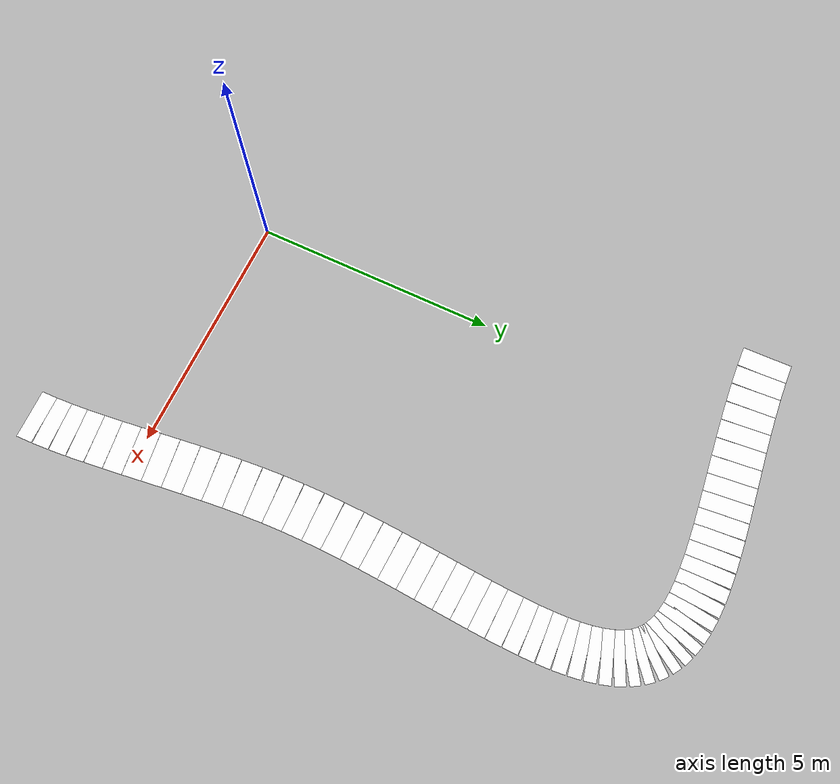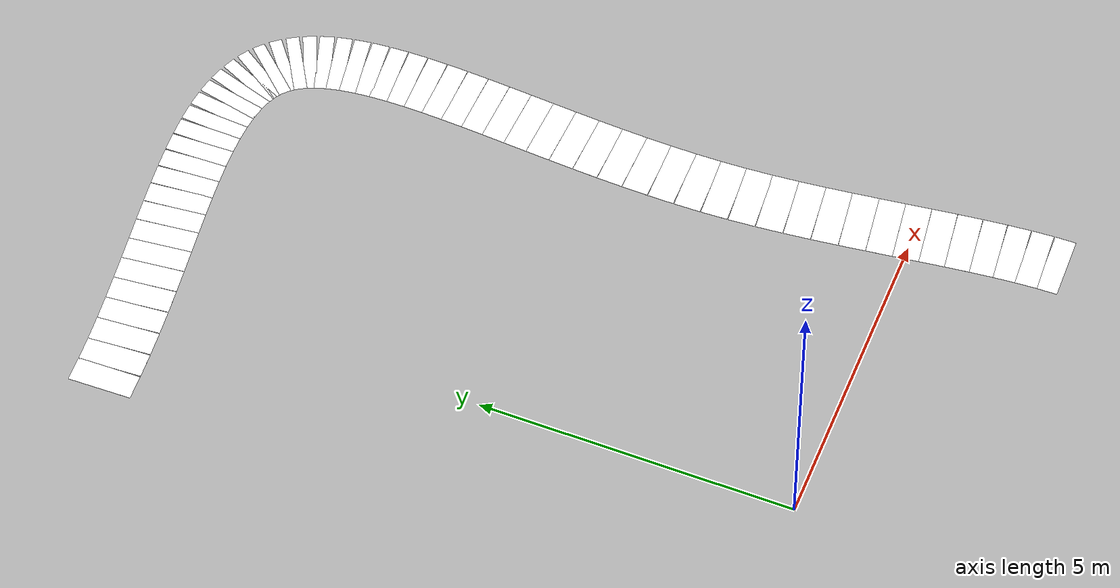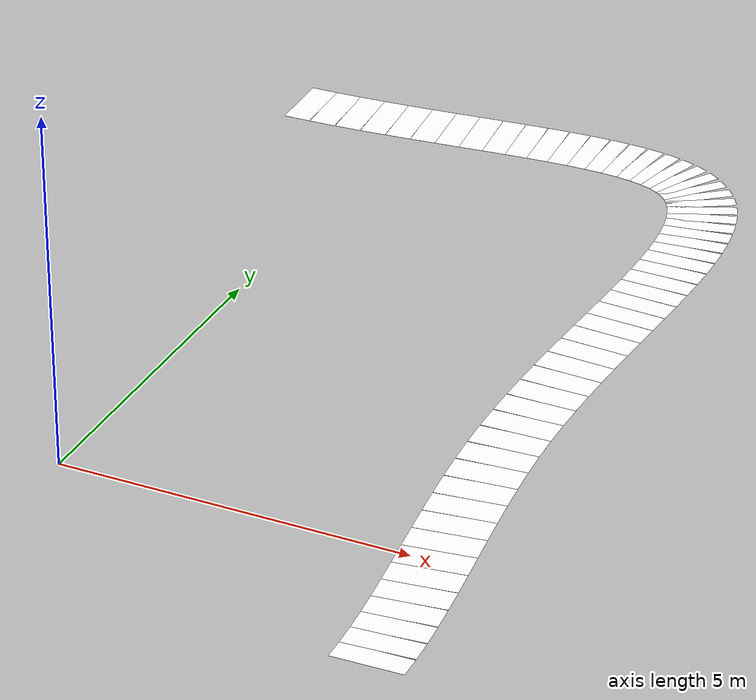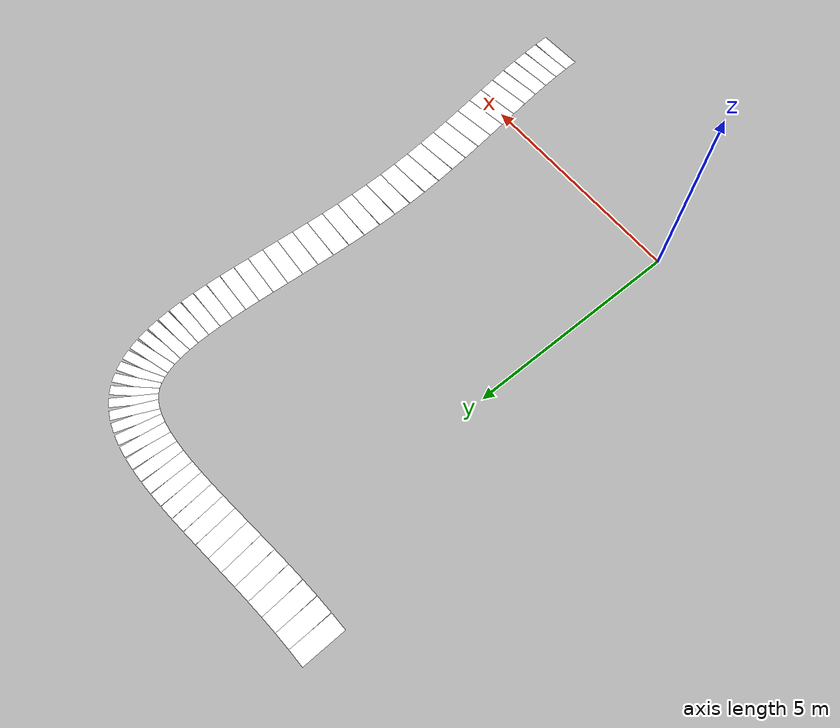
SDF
<sdf version="1.6">
 <model name="road_model">
  <model name="road_section_0">
   <static>1</static>
   <link name="road_link">
    <visual name="road_visual">
     <geometry><box><size>0.197141 1 0.0001</size></box></geometry>
     <material>
      <ambient>0.8 0.8 0.8 1</ambient>
      <diffuse>1 1 1 1</diffuse>
      <specular>0 0 0 1</specular>
      <pbr>
       <metal>
        <albedo_map>model://road_material/materials/textures/road_texture.jpg</albedo_map>
        <metalness>0</metalness>
        <roughness>0.8</roughness>
       </metal>
      </pbr>
     </material>
    </visual>
    <collision name="road_collision"><geometry><box><size>0.197141 1 0.0001</size></box></geometry></collision>
   </link>
   <pose>4.57288 10.3336 0 0 0 -0.738724</pose>
  </model>
  <model name="road_section_1">
   <static>1</static>
   <link name="road_link">
    <visual name="road_visual">
     <geometry><box><size>0.199153 1 0.0001</size></box></geometry>
     <material>
      <ambient>0.8 0.8 0.8 1</ambient>
      <diffuse>1 1 1 1</diffuse>
      <specular>0 0 0 1</specular>
      <pbr>
       <metal>
        <albedo_map>model://road_material/materials/textures/road_texture.jpg</albedo_map>
        <metalness>0</metalness>
        <roughness>0.8</roughness>
       </metal>
      </pbr>
     </material>
    </visual>
    <collision name="road_collision"><geometry><box><size>0.199153 1 0.0001</size></box></geometry></collision>
   </link>
   <pose>4.70788 10.1894 0 0 0 -0.897049</pose>
  </model>
  <model name="road_section_2">
   <static>1</static>
   <link name="road_link">
    <visual name="road_visual">
     <geometry><box><size>0.205917 1 0.0001</size></box></geometry>
     <material>
      <ambient>0.8 0.8 0.8 1</ambient>
      <diffuse>1 1 1 1</diffuse>
      <specular>0 0 0 1</specular>
      <pbr>
       <metal>
        <albedo_map>model://road_material/materials/textures/road_texture.jpg</albedo_map>
        <metalness>0</metalness>
        <roughness>0.8</roughness>
       </metal>
      </pbr>
     </material>
    </visual>
    <collision name="road_collision"><geometry><box><size>0.205917 1 0.0001</size></box></geometry></collision>
   </link>
   <pose>4.82211 10.0228 0 0 0 -1.04016</pose>
  </model>
  <model name="road_section_3">
   <static>1</static>
   <link name="road_link">
    <visual name="road_visual">
     <geometry><box><size>0.216306 1 0.0001</size></box></geometry>
     <material>
      <ambient>0.8 0.8 0.8 1</ambient>
      <diffuse>1 1 1 1</diffuse>
      <specular>0 0 0 1</specular>
      <pbr>
       <metal>
        <albedo_map>model://road_material/materials/textures/road_texture.jpg</albedo_map>
        <metalness>0</metalness>
        <roughness>0.8</roughness>
       </metal>
      </pbr>
     </material>
    </visual>
    <collision name="road_collision"><geometry><box><size>0.216306 1 0.0001</size></box></geometry></collision>
   </link>
   <pose>4.91703 9.8347 0 0 0 -1.16381</pose>
  </model>
  <model name="road_section_4">
   <static>1</static>
   <link name="road_link">
    <visual name="road_visual">
     <geometry><box><size>0.229219 1 0.0001</size></box></geometry>
     <material>
      <ambient>0.8 0.8 0.8 1</ambient>
      <diffuse>1 1 1 1</diffuse>
      <specular>0 0 0 1</specular>
      <pbr>
       <metal>
        <albedo_map>model://road_material/materials/textures/road_texture.jpg</albedo_map>
        <metalness>0</metalness>
        <roughness>0.8</roughness>
       </metal>
      </pbr>
     </material>
    </visual>
    <collision name="road_collision"><geometry><box><size>0.229219 1 0.0001</size></box></geometry></collision>
   </link>
   <pose>4.99408 9.62601 0 0 0 -1.26738</pose>
  </model>
  <model name="road_section_5">
   <static>1</static>
   <link name="road_link">
    <visual name="road_visual">
     <geometry><box><size>0.24372 1 0.0001</size></box></geometry>
     <material>
      <ambient>0.8 0.8 0.8 1</ambient>
      <diffuse>1 1 1 1</diffuse>
      <specular>0 0 0 1</specular>
      <pbr>
       <metal>
        <albedo_map>model://road_material/materials/textures/road_texture.jpg</albedo_map>
        <metalness>0</metalness>
        <roughness>0.8</roughness>
       </metal>
      </pbr>
     </material>
    </visual>
    <collision name="road_collision"><geometry><box><size>0.24372 1 0.0001</size></box></geometry></collision>
   </link>
   <pose>5.05473 9.39767 0 0 0 -1.35241</pose>
  </model>
  <model name="road_section_6">
   <static>1</static>
   <link name="road_link">
    <visual name="road_visual">
     <geometry><box><size>0.259075 1 0.0001</size></box></geometry>
     <material>
      <ambient>0.8 0.8 0.8 1</ambient>
      <diffuse>1 1 1 1</diffuse>
      <specular>0 0 0 1</specular>
      <pbr>
       <metal>
        <albedo_map>model://road_material/materials/textures/road_texture.jpg</albedo_map>
        <metalness>0</metalness>
        <roughness>0.8</roughness>
       </metal>
      </pbr>
     </material>
    </visual>
    <collision name="road_collision"><geometry><box><size>0.259075 1 0.0001</size></box></geometry></collision>
   </link>
   <pose>5.10042 9.15061 0 0 0 -1.42135</pose>
  </model>
  <model name="road_section_7">
   <static>1</static>
   <link name="road_link">
    <visual name="road_visual">
     <geometry><box><size>0.27473 1 0.0001</size></box></geometry>
     <material>
      <ambient>0.8 0.8 0.8 1</ambient>
      <diffuse>1 1 1 1</diffuse>
      <specular>0 0 0 1</specular>
      <pbr>
       <metal>
        <albedo_map>model://road_material/materials/textures/road_texture.jpg</albedo_map>
        <metalness>0</metalness>
        <roughness>0.8</roughness>
       </metal>
      </pbr>
     </material>
    </visual>
    <collision name="road_collision"><geometry><box><size>0.27473 1 0.0001</size></box></geometry></collision>
   </link>
   <pose>5.13261 8.88576 0 0 0 -1.47675</pose>
  </model>
  <model name="road_section_8">
   <static>1</static>
   <link name="road_link">
    <visual name="road_visual">
     <geometry><box><size>0.290279 1 0.0001</size></box></geometry>
     <material>
      <ambient>0.8 0.8 0.8 1</ambient>
      <diffuse>1 1 1 1</diffuse>
      <specular>0 0 0 1</specular>
      <pbr>
       <metal>
        <albedo_map>model://road_material/materials/textures/road_texture.jpg</albedo_map>
        <metalness>0</metalness>
        <roughness>0.8</roughness>
       </metal>
      </pbr>
     </material>
    </visual>
    <collision name="road_collision"><geometry><box><size>0.290279 1 0.0001</size></box></geometry></collision>
   </link>
   <pose>5.15275 8.60404 0 0 0 -1.5209</pose>
  </model>
  <model name="road_section_9">
   <static>1</static>
   <link name="road_link">
    <visual name="road_visual">
     <geometry><box><size>0.305427 1 0.0001</size></box></geometry>
     <material>
      <ambient>0.8 0.8 0.8 1</ambient>
      <diffuse>1 1 1 1</diffuse>
      <specular>0 0 0 1</specular>
      <pbr>
       <metal>
        <albedo_map>model://road_material/materials/textures/road_texture.jpg</albedo_map>
        <metalness>0</metalness>
        <roughness>0.8</roughness>
       </metal>
      </pbr>
     </material>
    </visual>
    <collision name="road_collision"><geometry><box><size>0.305427 1 0.0001</size></box></geometry></collision>
   </link>
   <pose>5.16229 8.30639 0 0 0 -1.5557</pose>
  </model>
  <model name="road_section_10">
   <static>1</static>
   <link name="road_link">
    <visual name="road_visual">
     <geometry><box><size>0.319962 1 0.0001</size></box></geometry>
     <material>
      <ambient>0.8 0.8 0.8 1</ambient>
      <diffuse>1 1 1 1</diffuse>
      <specular>0 0 0 1</specular>
      <pbr>
       <metal>
        <albedo_map>model://road_material/materials/textures/road_texture.jpg</albedo_map>
        <metalness>0</metalness>
        <roughness>0.8</roughness>
       </metal>
      </pbr>
     </material>
    </visual>
    <collision name="road_collision"><geometry><box><size>0.319962 1 0.0001</size></box></geometry></collision>
   </link>
   <pose>5.16269 7.99372 0 0 0 -1.58269</pose>
  </model>
  <model name="road_section_11">
   <static>1</static>
   <link name="road_link">
    <visual name="road_visual">
     <geometry><box><size>0.333733 1 0.0001</size></box></geometry>
     <material>
      <ambient>0.8 0.8 0.8 1</ambient>
      <diffuse>1 1 1 1</diffuse>
      <specular>0 0 0 1</specular>
      <pbr>
       <metal>
        <albedo_map>model://road_material/materials/textures/road_texture.jpg</albedo_map>
        <metalness>0</metalness>
        <roughness>0.8</roughness>
       </metal>
      </pbr>
     </material>
    </visual>
    <collision name="road_collision"><geometry><box><size>0.333733 1 0.0001</size></box></geometry></collision>
   </link>
   <pose>5.1554 7.66697 0 0 0 -1.60307</pose>
  </model>
  <model name="road_section_12">
   <static>1</static>
   <link name="road_link">
    <visual name="road_visual">
     <geometry><box><size>0.346634 1 0.0001</size></box></geometry>
     <material>
      <ambient>0.8 0.8 0.8 1</ambient>
      <diffuse>1 1 1 1</diffuse>
      <specular>0 0 0 1</specular>
      <pbr>
       <metal>
        <albedo_map>model://road_material/materials/textures/road_texture.jpg</albedo_map>
        <metalness>0</metalness>
        <roughness>0.8</roughness>
       </metal>
      </pbr>
     </material>
    </visual>
    <collision name="road_collision"><geometry><box><size>0.346634 1 0.0001</size></box></geometry></collision>
   </link>
   <pose>5.14188 7.32707 0 0 0 -1.61777</pose>
  </model>
  <model name="road_section_13">
   <static>1</static>
   <link name="road_link">
    <visual name="road_visual">
     <geometry><box><size>0.358594 1 0.0001</size></box></geometry>
     <material>
      <ambient>0.8 0.8 0.8 1</ambient>
      <diffuse>1 1 1 1</diffuse>
      <specular>0 0 0 1</specular>
      <pbr>
       <metal>
        <albedo_map>model://road_material/materials/textures/road_texture.jpg</albedo_map>
        <metalness>0</metalness>
        <roughness>0.8</roughness>
       </metal>
      </pbr>
     </material>
    </visual>
    <collision name="road_collision"><geometry><box><size>0.358594 1 0.0001</size></box></geometry></collision>
   </link>
   <pose>5.12358 6.97493 0 0 0 -1.62752</pose>
  </model>
  <model name="road_section_14">
   <static>1</static>
   <link name="road_link">
    <visual name="road_visual">
     <geometry><box><size>0.369568 1 0.0001</size></box></geometry>
     <material>
      <ambient>0.8 0.8 0.8 1</ambient>
      <diffuse>1 1 1 1</diffuse>
      <specular>0 0 0 1</specular>
      <pbr>
       <metal>
        <albedo_map>model://road_material/materials/textures/road_texture.jpg</albedo_map>
        <metalness>0</metalness>
        <roughness>0.8</roughness>
       </metal>
      </pbr>
     </material>
    </visual>
    <collision name="road_collision"><geometry><box><size>0.369568 1 0.0001</size></box></geometry></collision>
   </link>
   <pose>5.10195 6.6115 0 0 0 -1.63288</pose>
  </model>
  <model name="road_section_15">
   <static>1</static>
   <link name="road_link">
    <visual name="road_visual">
     <geometry><box><size>0.379531 1 0.0001</size></box></geometry>
     <material>
      <ambient>0.8 0.8 0.8 1</ambient>
      <diffuse>1 1 1 1</diffuse>
      <specular>0 0 0 1</specular>
      <pbr>
       <metal>
        <albedo_map>model://road_material/materials/textures/road_texture.jpg</albedo_map>
        <metalness>0</metalness>
        <roughness>0.8</roughness>
       </metal>
      </pbr>
     </material>
    </visual>
    <collision name="road_collision"><geometry><box><size>0.379531 1 0.0001</size></box></geometry></collision>
   </link>
   <pose>5.07845 6.23769 0 0 0 -1.63428</pose>
  </model>
  <model name="road_section_16">
   <static>1</static>
   <link name="road_link">
    <visual name="road_visual">
     <geometry><box><size>0.388479 1 0.0001</size></box></geometry>
     <material>
      <ambient>0.8 0.8 0.8 1</ambient>
      <diffuse>1 1 1 1</diffuse>
      <specular>0 0 0 1</specular>
      <pbr>
       <metal>
        <albedo_map>model://road_material/materials/textures/road_texture.jpg</albedo_map>
        <metalness>0</metalness>
        <roughness>0.8</roughness>
       </metal>
      </pbr>
     </material>
    </visual>
    <collision name="road_collision"><geometry><box><size>0.388479 1 0.0001</size></box></geometry></collision>
   </link>
   <pose>5.05452 5.85443 0 0 0 -1.63203</pose>
  </model>
  <model name="road_section_17">
   <static>1</static>
   <link name="road_link">
    <visual name="road_visual">
     <geometry><box><size>0.396419 1 0.0001</size></box></geometry>
     <material>
      <ambient>0.8 0.8 0.8 1</ambient>
      <diffuse>1 1 1 1</diffuse>
      <specular>0 0 0 1</specular>
      <pbr>
       <metal>
        <albedo_map>model://road_material/materials/textures/road_texture.jpg</albedo_map>
        <metalness>0</metalness>
        <roughness>0.8</roughness>
       </metal>
      </pbr>
     </material>
    </visual>
    <collision name="road_collision"><geometry><box><size>0.396419 1 0.0001</size></box></geometry></collision>
   </link>
   <pose>5.03163 5.46265 0 0 0 -1.62635</pose>
  </model>
  <model name="road_section_18">
   <static>1</static>
   <link name="road_link">
    <visual name="road_visual">
     <geometry><box><size>0.403375 1 0.0001</size></box></geometry>
     <material>
      <ambient>0.8 0.8 0.8 1</ambient>
      <diffuse>1 1 1 1</diffuse>
      <specular>0 0 0 1</specular>
      <pbr>
       <metal>
        <albedo_map>model://road_material/materials/textures/road_texture.jpg</albedo_map>
        <metalness>0</metalness>
        <roughness>0.8</roughness>
       </metal>
      </pbr>
     </material>
    </visual>
    <collision name="road_collision"><geometry><box><size>0.403375 1 0.0001</size></box></geometry></collision>
   </link>
   <pose>5.01122 5.06328 0 0 0 -1.61742</pose>
  </model>
  <model name="road_section_19">
   <static>1</static>
   <link name="road_link">
    <visual name="road_visual">
     <geometry><box><size>0.409383 1 0.0001</size></box></geometry>
     <material>
      <ambient>0.8 0.8 0.8 1</ambient>
      <diffuse>1 1 1 1</diffuse>
      <specular>0 0 0 1</specular>
      <pbr>
       <metal>
        <albedo_map>model://road_material/materials/textures/road_texture.jpg</albedo_map>
        <metalness>0</metalness>
        <roughness>0.8</roughness>
       </metal>
      </pbr>
     </material>
    </visual>
    <collision name="road_collision"><geometry><box><size>0.409383 1 0.0001</size></box></geometry></collision>
   </link>
   <pose>4.99476 4.65724 0 0 0 -1.60533</pose>
  </model>
  <model name="road_section_20">
   <static>1</static>
   <link name="road_link">
    <visual name="road_visual">
     <geometry><box><size>0.414492 1 0.0001</size></box></geometry>
     <material>
      <ambient>0.8 0.8 0.8 1</ambient>
      <diffuse>1 1 1 1</diffuse>
      <specular>0 0 0 1</specular>
      <pbr>
       <metal>
        <albedo_map>model://road_material/materials/textures/road_texture.jpg</albedo_map>
        <metalness>0</metalness>
        <roughness>0.8</roughness>
       </metal>
      </pbr>
     </material>
    </visual>
    <collision name="road_collision"><geometry><box><size>0.414492 1 0.0001</size></box></geometry></collision>
   </link>
   <pose>4.98368 4.24546 0 0 0 -1.59013</pose>
  </model>
  <model name="road_section_21">
   <static>1</static>
   <link name="road_link">
    <visual name="road_visual">
     <geometry><box><size>0.418762 1 0.0001</size></box></geometry>
     <material>
      <ambient>0.8 0.8 0.8 1</ambient>
      <diffuse>1 1 1 1</diffuse>
      <specular>0 0 0 1</specular>
      <pbr>
       <metal>
        <albedo_map>model://road_material/materials/textures/road_texture.jpg</albedo_map>
        <metalness>0</metalness>
        <roughness>0.8</roughness>
       </metal>
      </pbr>
     </material>
    </visual>
    <collision name="road_collision"><geometry><box><size>0.418762 1 0.0001</size></box></geometry></collision>
   </link>
   <pose>4.97946 3.82887 0 0 0 -1.57184</pose>
  </model>
  <model name="road_section_22">
   <static>1</static>
   <link name="road_link">
    <visual name="road_visual">
     <geometry><box><size>0.42227 1 0.0001</size></box></geometry>
     <material>
      <ambient>0.8 0.8 0.8 1</ambient>
      <diffuse>1 1 1 1</diffuse>
      <specular>0 0 0 1</specular>
      <pbr>
       <metal>
        <albedo_map>model://road_material/materials/textures/road_texture.jpg</albedo_map>
        <metalness>0</metalness>
        <roughness>0.8</roughness>
       </metal>
      </pbr>
     </material>
    </visual>
    <collision name="road_collision"><geometry><box><size>0.42227 1 0.0001</size></box></geometry></collision>
   </link>
   <pose>4.98353 3.4084 0 0 0 -1.55046</pose>
  </model>
  <model name="road_section_23">
   <static>1</static>
   <link name="road_link">
    <visual name="road_visual">
     <geometry><box><size>0.425101 1 0.0001</size></box></geometry>
     <material>
      <ambient>0.8 0.8 0.8 1</ambient>
      <diffuse>1 1 1 1</diffuse>
      <specular>0 0 0 1</specular>
      <pbr>
       <metal>
        <albedo_map>model://road_material/materials/textures/road_texture.jpg</albedo_map>
        <metalness>0</metalness>
        <roughness>0.8</roughness>
       </metal>
      </pbr>
     </material>
    </visual>
    <collision name="road_collision"><geometry><box><size>0.425101 1 0.0001</size></box></geometry></collision>
   </link>
   <pose>4.99735 2.98497 0 0 0 -1.52596</pose>
  </model>
  <model name="road_section_24">
   <static>1</static>
   <link name="road_link">
    <visual name="road_visual">
     <geometry><box><size>0.427101 1 0.0001</size></box></geometry>
     <material>
      <ambient>0.8 0.8 0.8 1</ambient>
      <diffuse>1 1 1 1</diffuse>
      <specular>0 0 0 1</specular>
      <pbr>
       <metal>
        <albedo_map>model://road_material/materials/textures/road_texture.jpg</albedo_map>
        <metalness>0</metalness>
        <roughness>0.8</roughness>
       </metal>
      </pbr>
     </material>
    </visual>
    <collision name="road_collision"><geometry><box><size>0.427101 1 0.0001</size></box></geometry></collision>
   </link>
   <pose>5.02177 2.5596 0 0 0 -1.50102</pose>
  </model>
  <model name="road_section_25">
   <static>1</static>
   <link name="road_link">
    <visual name="road_visual">
     <geometry><box><size>0.427807 1 0.0001</size></box></geometry>
     <material>
      <ambient>0.8 0.8 0.8 1</ambient>
      <diffuse>1 1 1 1</diffuse>
      <specular>0 0 0 1</specular>
      <pbr>
       <metal>
        <albedo_map>model://road_material/materials/textures/road_texture.jpg</albedo_map>
        <metalness>0</metalness>
        <roughness>0.8</roughness>
       </metal>
      </pbr>
     </material>
    </visual>
    <collision name="road_collision"><geometry><box><size>0.427807 1 0.0001</size></box></geometry></collision>
   </link>
   <pose>5.05603 2.13355 0 0 0 -1.48009</pose>
  </model>
  <model name="road_section_26">
   <static>1</static>
   <link name="road_link">
    <visual name="road_visual">
     <geometry><box><size>0.427068 1 0.0001</size></box></geometry>
     <material>
      <ambient>0.8 0.8 0.8 1</ambient>
      <diffuse>1 1 1 1</diffuse>
      <specular>0 0 0 1</specular>
      <pbr>
       <metal>
        <albedo_map>model://road_material/materials/textures/road_texture.jpg</albedo_map>
        <metalness>0</metalness>
        <roughness>0.8</roughness>
       </metal>
      </pbr>
     </material>
    </visual>
    <collision name="road_collision"><geometry><box><size>0.427068 1 0.0001</size></box></geometry></collision>
   </link>
   <pose>5.0983 1.70822 0 0 0 -1.46339</pose>
  </model>
  <model name="road_section_27">
   <static>1</static>
   <link name="road_link">
    <visual name="road_visual">
     <geometry><box><size>0.424794 1 0.0001</size></box></geometry>
     <material>
      <ambient>0.8 0.8 0.8 1</ambient>
      <diffuse>1 1 1 1</diffuse>
      <specular>0 0 0 1</specular>
      <pbr>
       <metal>
        <albedo_map>model://road_material/materials/textures/road_texture.jpg</albedo_map>
        <metalness>0</metalness>
        <roughness>0.8</roughness>
       </metal>
      </pbr>
     </material>
    </visual>
    <collision name="road_collision"><geometry><box><size>0.424794 1 0.0001</size></box></geometry></collision>
   </link>
   <pose>5.14662 1.28505 0 0 0 -1.45076</pose>
  </model>
  <model name="road_section_28">
   <static>1</static>
   <link name="road_link">
    <visual name="road_visual">
     <geometry><box><size>0.420918 1 0.0001</size></box></geometry>
     <material>
      <ambient>0.8 0.8 0.8 1</ambient>
      <diffuse>1 1 1 1</diffuse>
      <specular>0 0 0 1</specular>
      <pbr>
       <metal>
        <albedo_map>model://road_material/materials/textures/road_texture.jpg</albedo_map>
        <metalness>0</metalness>
        <roughness>0.8</roughness>
       </metal>
      </pbr>
     </material>
    </visual>
    <collision name="road_collision"><geometry><box><size>0.420918 1 0.0001</size></box></geometry></collision>
   </link>
   <pose>5.19906 0.865461 0 0 0 -1.44212</pose>
  </model>
  <model name="road_section_29">
   <static>1</static>
   <link name="road_link">
    <visual name="road_visual">
     <geometry><box><size>0.415396 1 0.0001</size></box></geometry>
     <material>
      <ambient>0.8 0.8 0.8 1</ambient>
      <diffuse>1 1 1 1</diffuse>
      <specular>0 0 0 1</specular>
      <pbr>
       <metal>
        <albedo_map>model://road_material/materials/textures/road_texture.jpg</albedo_map>
        <metalness>0</metalness>
        <roughness>0.8</roughness>
       </metal>
      </pbr>
     </material>
    </visual>
    <collision name="road_collision"><geometry><box><size>0.415396 1 0.0001</size></box></geometry></collision>
   </link>
   <pose>5.25367 0.450887 0 0 0 -1.43748</pose>
  </model>
  <model name="road_section_30">
   <static>1</static>
   <link name="road_link">
    <visual name="road_visual">
     <geometry><box><size>0.408204 1 0.0001</size></box></geometry>
     <material>
      <ambient>0.8 0.8 0.8 1</ambient>
      <diffuse>1 1 1 1</diffuse>
      <specular>0 0 0 1</specular>
      <pbr>
       <metal>
        <albedo_map>model://road_material/materials/textures/road_texture.jpg</albedo_map>
        <metalness>0</metalness>
        <roughness>0.8</roughness>
       </metal>
      </pbr>
     </material>
    </visual>
    <collision name="road_collision"><geometry><box><size>0.408204 1 0.0001</size></box></geometry></collision>
   </link>
   <pose>5.30852 0.042755 0 0 0 -1.43696</pose>
  </model>
  <model name="road_section_31">
   <static>1</static>
   <link name="road_link">
    <visual name="road_visual">
     <geometry><box><size>0.39934 1 0.0001</size></box></geometry>
     <material>
      <ambient>0.8 0.8 0.8 1</ambient>
      <diffuse>1 1 1 1</diffuse>
      <specular>0 0 0 1</specular>
      <pbr>
       <metal>
        <albedo_map>model://road_material/materials/textures/road_texture.jpg</albedo_map>
        <metalness>0</metalness>
        <roughness>0.8</roughness>
       </metal>
      </pbr>
     </material>
    </visual>
    <collision name="road_collision"><geometry><box><size>0.39934 1 0.0001</size></box></geometry></collision>
   </link>
   <pose>5.36165 -0.357506 0 0 0 -1.44075</pose>
  </model>
  <model name="road_section_32">
   <static>1</static>
   <link name="road_link">
    <visual name="road_visual">
     <geometry><box><size>0.388824 1 0.0001</size></box></geometry>
     <material>
      <ambient>0.8 0.8 0.8 1</ambient>
      <diffuse>1 1 1 1</diffuse>
      <specular>0 0 0 1</specular>
      <pbr>
       <metal>
        <albedo_map>model://road_material/materials/textures/road_texture.jpg</albedo_map>
        <metalness>0</metalness>
        <roughness>0.8</roughness>
       </metal>
      </pbr>
     </material>
    </visual>
    <collision name="road_collision"><geometry><box><size>0.388824 1 0.0001</size></box></geometry></collision>
   </link>
   <pose>5.41112 -0.748467 0 0 0 -1.44921</pose>
  </model>
  <model name="road_section_33">
   <static>1</static>
   <link name="road_link">
    <visual name="road_visual">
     <geometry><box><size>0.376704 1 0.0001</size></box></geometry>
     <material>
      <ambient>0.8 0.8 0.8 1</ambient>
      <diffuse>1 1 1 1</diffuse>
      <specular>0 0 0 1</specular>
      <pbr>
       <metal>
        <albedo_map>model://road_material/materials/textures/road_texture.jpg</albedo_map>
        <metalness>0</metalness>
        <roughness>0.8</roughness>
       </metal>
      </pbr>
     </material>
    </visual>
    <collision name="road_collision"><geometry><box><size>0.376704 1 0.0001</size></box></geometry></collision>
   </link>
   <pose>5.45499 -1.1287 0 0 0 -1.46285</pose>
  </model>
  <model name="road_section_34">
   <static>1</static>
   <link name="road_link">
    <visual name="road_visual">
     <geometry><box><size>0.363058 1 0.0001</size></box></geometry>
     <material>
      <ambient>0.8 0.8 0.8 1</ambient>
      <diffuse>1 1 1 1</diffuse>
      <specular>0 0 0 1</specular>
      <pbr>
       <metal>
        <albedo_map>model://road_material/materials/textures/road_texture.jpg</albedo_map>
        <metalness>0</metalness>
        <roughness>0.8</roughness>
       </metal>
      </pbr>
     </material>
    </visual>
    <collision name="road_collision"><geometry><box><size>0.363058 1 0.0001</size></box></geometry></collision>
   </link>
   <pose>5.49132 -1.49677 0 0 0 -1.48234</pose>
  </model>
  <model name="road_section_35">
   <static>1</static>
   <link name="road_link">
    <visual name="road_visual">
     <geometry><box><size>0.34801 1 0.0001</size></box></geometry>
     <material>
      <ambient>0.8 0.8 0.8 1</ambient>
      <diffuse>1 1 1 1</diffuse>
      <specular>0 0 0 1</specular>
      <pbr>
       <metal>
        <albedo_map>model://road_material/materials/textures/road_texture.jpg</albedo_map>
        <metalness>0</metalness>
        <roughness>0.8</roughness>
       </metal>
      </pbr>
     </material>
    </visual>
    <collision name="road_collision"><geometry><box><size>0.34801 1 0.0001</size></box></geometry></collision>
   </link>
   <pose>5.51816 -1.85126 0 0 0 -1.50865</pose>
  </model>
  <model name="road_section_36">
   <static>1</static>
   <link name="road_link">
    <visual name="road_visual">
     <geometry><box><size>0.331737 1 0.0001</size></box></geometry>
     <material>
      <ambient>0.8 0.8 0.8 1</ambient>
      <diffuse>1 1 1 1</diffuse>
      <specular>0 0 0 1</specular>
      <pbr>
       <metal>
        <albedo_map>model://road_material/materials/textures/road_texture.jpg</albedo_map>
        <metalness>0</metalness>
        <roughness>0.8</roughness>
       </metal>
      </pbr>
     </material>
    </visual>
    <collision name="road_collision"><geometry><box><size>0.331737 1 0.0001</size></box></geometry></collision>
   </link>
   <pose>5.53357 -2.19074 0 0 0 -1.54302</pose>
  </model>
  <model name="road_section_153">
   <static>1</static>
   <link name="road_link">
    <visual name="road_visual">
     <geometry><box><size>0.400847 1 0.0001</size></box></geometry>
     <material>
      <ambient>0.8 0.8 0.8 1</ambient>
      <diffuse>1 1 1 1</diffuse>
      <specular>0 0 0 1</specular>
      <pbr>
       <metal>
        <albedo_map>model://road_material/materials/textures/road_texture.jpg</albedo_map>
        <metalness>0</metalness>
        <roughness>0.8</roughness>
       </metal>
      </pbr>
     </material>
    </visual>
    <collision name="road_collision"><geometry><box><size>0.400847 1 0.0001</size></box></geometry></collision>
   </link>
   <pose>-1.60063 10.405 0 0 -0 0.022714</pose>
  </model>
  <model name="road_section_154">
   <static>1</static>
   <link name="road_link">
    <visual name="road_visual">
     <geometry><box><size>0.398591 1 0.0001</size></box></geometry>
     <material>
      <ambient>0.8 0.8 0.8 1</ambient>
      <diffuse>1 1 1 1</diffuse>
      <specular>0 0 0 1</specular>
      <pbr>
       <metal>
        <albedo_map>model://road_material/materials/textures/road_texture.jpg</albedo_map>
        <metalness>0</metalness>
        <roughness>0.8</roughness>
       </metal>
      </pbr>
     </material>
    </visual>
    <collision name="road_collision"><geometry><box><size>0.398591 1 0.0001</size></box></geometry></collision>
   </link>
   <pose>-1.20118 10.4189 0 0 -0 0.046917</pose>
  </model>
  <model name="road_section_155">
   <static>1</static>
   <link name="road_link">
    <visual name="road_visual">
     <geometry><box><size>0.39538 1 0.0001</size></box></geometry>
     <material>
      <ambient>0.8 0.8 0.8 1</ambient>
      <diffuse>1 1 1 1</diffuse>
      <specular>0 0 0 1</specular>
      <pbr>
       <metal>
        <albedo_map>model://road_material/materials/textures/road_texture.jpg</albedo_map>
        <metalness>0</metalness>
        <roughness>0.8</roughness>
       </metal>
      </pbr>
     </material>
    </visual>
    <collision name="road_collision"><geometry><box><size>0.39538 1 0.0001</size></box></geometry></collision>
   </link>
   <pose>-0.804864 10.4415 0 0 -0 0.067138</pose>
  </model>
  <model name="road_section_156">
   <static>1</static>
   <link name="road_link">
    <visual name="road_visual">
     <geometry><box><size>0.391116 1 0.0001</size></box></geometry>
     <material>
      <ambient>0.8 0.8 0.8 1</ambient>
      <diffuse>1 1 1 1</diffuse>
      <specular>0 0 0 1</specular>
      <pbr>
       <metal>
        <albedo_map>model://road_material/materials/textures/road_texture.jpg</albedo_map>
        <metalness>0</metalness>
        <roughness>0.8</roughness>
       </metal>
      </pbr>
     </material>
    </visual>
    <collision name="road_collision"><geometry><box><size>0.391116 1 0.0001</size></box></geometry></collision>
   </link>
   <pose>-0.412742 10.471 0 0 -0 0.083443</pose>
  </model>
  <model name="road_section_157">
   <static>1</static>
   <link name="road_link">
    <visual name="road_visual">
     <geometry><box><size>0.385719 1 0.0001</size></box></geometry>
     <material>
      <ambient>0.8 0.8 0.8 1</ambient>
      <diffuse>1 1 1 1</diffuse>
      <specular>0 0 0 1</specular>
      <pbr>
       <metal>
        <albedo_map>model://road_material/materials/textures/road_texture.jpg</albedo_map>
        <metalness>0</metalness>
        <roughness>0.8</roughness>
       </metal>
      </pbr>
     </material>
    </visual>
    <collision name="road_collision"><geometry><box><size>0.385719 1 0.0001</size></box></geometry></collision>
   </link>
   <pose>-0.02589 10.5058 0 0 -0 0.095844</pose>
  </model>
  <model name="road_section_158">
   <static>1</static>
   <link name="road_link">
    <visual name="road_visual">
     <geometry><box><size>0.379132 1 0.0001</size></box></geometry>
     <material>
      <ambient>0.8 0.8 0.8 1</ambient>
      <diffuse>1 1 1 1</diffuse>
      <specular>0 0 0 1</specular>
      <pbr>
       <metal>
        <albedo_map>model://road_material/materials/textures/road_texture.jpg</albedo_map>
        <metalness>0</metalness>
        <roughness>0.8</roughness>
       </metal>
      </pbr>
     </material>
    </visual>
    <collision name="road_collision"><geometry><box><size>0.379132 1 0.0001</size></box></geometry></collision>
   </link>
   <pose>0.354621 10.544 0 0 -0 0.104291</pose>
  </model>
  <model name="road_section_159">
   <static>1</static>
   <link name="road_link">
    <visual name="road_visual">
     <geometry><box><size>0.371313 1 0.0001</size></box></geometry>
     <material>
      <ambient>0.8 0.8 0.8 1</ambient>
      <diffuse>1 1 1 1</diffuse>
      <specular>0 0 0 1</specular>
      <pbr>
       <metal>
        <albedo_map>model://road_material/materials/textures/road_texture.jpg</albedo_map>
        <metalness>0</metalness>
        <roughness>0.8</roughness>
       </metal>
      </pbr>
     </material>
    </visual>
    <collision name="road_collision"><geometry><box><size>0.371313 1 0.0001</size></box></geometry></collision>
   </link>
   <pose>0.727719 10.5839 0 0 -0 0.108657</pose>
  </model>
  <model name="road_section_160">
   <static>1</static>
   <link name="road_link">
    <visual name="road_visual">
     <geometry><box><size>0.362242 1 0.0001</size></box></geometry>
     <material>
      <ambient>0.8 0.8 0.8 1</ambient>
      <diffuse>1 1 1 1</diffuse>
      <specular>0 0 0 1</specular>
      <pbr>
       <metal>
        <albedo_map>model://road_material/materials/textures/road_texture.jpg</albedo_map>
        <metalness>0</metalness>
        <roughness>0.8</roughness>
       </metal>
      </pbr>
     </material>
    </visual>
    <collision name="road_collision"><geometry><box><size>0.362242 1 0.0001</size></box></geometry></collision>
   </link>
   <pose>1.09233 10.6236 0 0 -0 0.108722</pose>
  </model>
  <model name="road_section_161">
   <static>1</static>
   <link name="road_link">
    <visual name="road_visual">
     <geometry><box><size>0.351918 1 0.0001</size></box></geometry>
     <material>
      <ambient>0.8 0.8 0.8 1</ambient>
      <diffuse>1 1 1 1</diffuse>
      <specular>0 0 0 1</specular>
      <pbr>
       <metal>
        <albedo_map>model://road_material/materials/textures/road_texture.jpg</albedo_map>
        <metalness>0</metalness>
        <roughness>0.8</roughness>
       </metal>
      </pbr>
     </material>
    </visual>
    <collision name="road_collision"><geometry><box><size>0.351918 1 0.0001</size></box></geometry></collision>
   </link>
   <pose>1.44739 10.6616 0 0 -0 0.104153</pose>
  </model>
  <model name="road_section_162">
   <static>1</static>
   <link name="road_link">
    <visual name="road_visual">
     <geometry><box><size>0.340366 1 0.0001</size></box></geometry>
     <material>
      <ambient>0.8 0.8 0.8 1</ambient>
      <diffuse>1 1 1 1</diffuse>
      <specular>0 0 0 1</specular>
      <pbr>
       <metal>
        <albedo_map>model://road_material/materials/textures/road_texture.jpg</albedo_map>
        <metalness>0</metalness>
        <roughness>0.8</roughness>
       </metal>
      </pbr>
     </material>
    </visual>
    <collision name="road_collision"><geometry><box><size>0.340366 1 0.0001</size></box></geometry></collision>
   </link>
   <pose>1.79182 10.6959 0 0 -0 0.09448</pose>
  </model>
  <model name="road_section_163">
   <static>1</static>
   <link name="road_link">
    <visual name="road_visual">
     <geometry><box><size>0.327636 1 0.0001</size></box></geometry>
     <material>
      <ambient>0.8 0.8 0.8 1</ambient>
      <diffuse>1 1 1 1</diffuse>
      <specular>0 0 0 1</specular>
      <pbr>
       <metal>
        <albedo_map>model://road_material/materials/textures/road_texture.jpg</albedo_map>
        <metalness>0</metalness>
        <roughness>0.8</roughness>
       </metal>
      </pbr>
     </material>
    </visual>
    <collision name="road_collision"><geometry><box><size>0.327636 1 0.0001</size></box></geometry></collision>
   </link>
   <pose>2.12455 10.7249 0 0 -0 0.079055</pose>
  </model>
  <model name="road_section_164">
   <static>1</static>
   <link name="road_link">
    <visual name="road_visual">
     <geometry><box><size>0.313816 1 0.0001</size></box></geometry>
     <material>
      <ambient>0.8 0.8 0.8 1</ambient>
      <diffuse>1 1 1 1</diffuse>
      <specular>0 0 0 1</specular>
      <pbr>
       <metal>
        <albedo_map>model://road_material/materials/textures/road_texture.jpg</albedo_map>
        <metalness>0</metalness>
        <roughness>0.8</roughness>
       </metal>
      </pbr>
     </material>
    </visual>
    <collision name="road_collision"><geometry><box><size>0.313816 1 0.0001</size></box></geometry></collision>
   </link>
   <pose>2.44451 10.7468 0 0 -0 0.057008</pose>
  </model>
  <model name="road_section_165">
   <static>1</static>
   <link name="road_link">
    <visual name="road_visual">
     <geometry><box><size>0.299039 1 0.0001</size></box></geometry>
     <material>
      <ambient>0.8 0.8 0.8 1</ambient>
      <diffuse>1 1 1 1</diffuse>
      <specular>0 0 0 1</specular>
      <pbr>
       <metal>
        <albedo_map>model://road_material/materials/textures/road_texture.jpg</albedo_map>
        <metalness>0</metalness>
        <roughness>0.8</roughness>
       </metal>
      </pbr>
     </material>
    </visual>
    <collision name="road_collision"><geometry><box><size>0.299039 1 0.0001</size></box></geometry></collision>
   </link>
   <pose>2.75062 10.7598 0 0 -0 0.027184</pose>
  </model>
  <model name="road_section_166">
   <static>1</static>
   <link name="road_link">
    <visual name="road_visual">
     <geometry><box><size>0.283499 1 0.0001</size></box></geometry>
     <material>
      <ambient>0.8 0.8 0.8 1</ambient>
      <diffuse>1 1 1 1</diffuse>
      <specular>0 0 0 1</specular>
      <pbr>
       <metal>
        <albedo_map>model://road_material/materials/textures/road_texture.jpg</albedo_map>
        <metalness>0</metalness>
        <roughness>0.8</roughness>
       </metal>
      </pbr>
     </material>
    </visual>
    <collision name="road_collision"><geometry><box><size>0.283499 1 0.0001</size></box></geometry></collision>
   </link>
   <pose>3.04183 10.7622 0 0 0 -0.011932</pose>
  </model>
  <model name="road_section_167">
   <static>1</static>
   <link name="road_link">
    <visual name="road_visual">
     <geometry><box><size>0.267477 1 0.0001</size></box></geometry>
     <material>
      <ambient>0.8 0.8 0.8 1</ambient>
      <diffuse>1 1 1 1</diffuse>
      <specular>0 0 0 1</specular>
      <pbr>
       <metal>
        <albedo_map>model://road_material/materials/textures/road_texture.jpg</albedo_map>
        <metalness>0</metalness>
        <roughness>0.8</roughness>
       </metal>
      </pbr>
     </material>
    </visual>
    <collision name="road_collision"><geometry><box><size>0.267477 1 0.0001</size></box></geometry></collision>
   </link>
   <pose>3.31705 10.7522 0 0 0 -0.062295</pose>
  </model>
  <model name="road_section_168">
   <static>1</static>
   <link name="road_link">
    <visual name="road_visual">
     <geometry><box><size>0.25137 1 0.0001</size></box></geometry>
     <material>
      <ambient>0.8 0.8 0.8 1</ambient>
      <diffuse>1 1 1 1</diffuse>
      <specular>0 0 0 1</specular>
      <pbr>
       <metal>
        <albedo_map>model://road_material/materials/textures/road_texture.jpg</albedo_map>
        <metalness>0</metalness>
        <roughness>0.8</roughness>
       </metal>
      </pbr>
     </material>
    </visual>
    <collision name="road_collision"><geometry><box><size>0.25137 1 0.0001</size></box></geometry></collision>
   </link>
   <pose>3.57521 10.728 0 0 0 -0.126362</pose>
  </model>
  <model name="road_section_169">
   <static>1</static>
   <link name="road_link">
    <visual name="road_visual">
     <geometry><box><size>0.235737 1 0.0001</size></box></geometry>
     <material>
      <ambient>0.8 0.8 0.8 1</ambient>
      <diffuse>1 1 1 1</diffuse>
      <specular>0 0 0 1</specular>
      <pbr>
       <metal>
        <albedo_map>model://road_material/materials/textures/road_texture.jpg</albedo_map>
        <metalness>0</metalness>
        <roughness>0.8</roughness>
       </metal>
      </pbr>
     </material>
    </visual>
    <collision name="road_collision"><geometry><box><size>0.235737 1 0.0001</size></box></geometry></collision>
   </link>
   <pose>3.81524 10.6879 0 0 0 -0.207064</pose>
  </model>
  <model name="road_section_170">
   <static>1</static>
   <link name="road_link">
    <visual name="road_visual">
     <geometry><box><size>0.221353 1 0.0001</size></box></geometry>
     <material>
      <ambient>0.8 0.8 0.8 1</ambient>
      <diffuse>1 1 1 1</diffuse>
      <specular>0 0 0 1</specular>
      <pbr>
       <metal>
        <albedo_map>model://road_material/materials/textures/road_texture.jpg</albedo_map>
        <metalness>0</metalness>
        <roughness>0.8</roughness>
       </metal>
      </pbr>
     </material>
    </visual>
    <collision name="road_collision"><geometry><box><size>0.221353 1 0.0001</size></box></geometry></collision>
   </link>
   <pose>4.03608 10.6302 0 0 0 -0.30755</pose>
  </model>
  <model name="road_section_171">
   <static>1</static>
   <link name="road_link">
    <visual name="road_visual">
     <geometry><box><size>0.209246 1 0.0001</size></box></geometry>
     <material>
      <ambient>0.8 0.8 0.8 1</ambient>
      <diffuse>1 1 1 1</diffuse>
      <specular>0 0 0 1</specular>
      <pbr>
       <metal>
        <albedo_map>model://road_material/materials/textures/road_texture.jpg</albedo_map>
        <metalness>0</metalness>
        <roughness>0.8</roughness>
       </metal>
      </pbr>
     </material>
    </visual>
    <collision name="road_collision"><geometry><box><size>0.209246 1 0.0001</size></box></geometry></collision>
   </link>
   <pose>4.23664 10.553 0 0 0 -0.430435</pose>
  </model>
  <model name="road_section_172">
   <static>1</static>
   <link name="road_link">
    <visual name="road_visual">
     <geometry><box><size>0.2007 1 0.0001</size></box></geometry>
     <material>
      <ambient>0.8 0.8 0.8 1</ambient>
      <diffuse>1 1 1 1</diffuse>
      <specular>0 0 0 1</specular>
      <pbr>
       <metal>
        <albedo_map>model://road_material/materials/textures/road_texture.jpg</albedo_map>
        <metalness>0</metalness>
        <roughness>0.8</roughness>
       </metal>
      </pbr>
     </material>
    </visual>
    <collision name="road_collision"><geometry><box><size>0.2007 1 0.0001</size></box></geometry></collision>
   </link>
   <pose>4.41586 10.4547 0 0 0 -0.576332</pose>
  </model>
  <model name="road_section_173">
   <static>1</static>
   <link name="road_link">
    <visual name="road_visual">
     <geometry><box><size>0 1 0.0001</size></box></geometry>
     <material>
      <ambient>0.8 0.8 0.8 1</ambient>
      <diffuse>1 1 1 1</diffuse>
      <specular>0 0 0 1</specular>
      <pbr>
       <metal>
        <albedo_map>model://road_material/materials/textures/road_texture.jpg</albedo_map>
        <metalness>0</metalness>
        <roughness>0.8</roughness>
       </metal>
      </pbr>
     </material>
    </visual>
    <collision name="road_collision"><geometry><box><size>0 1 0.0001</size></box></geometry></collision>
   </link>
   <pose>4.5 10.4 0 0 -0 0</pose>
  </model>
 </model>
</sdf>
